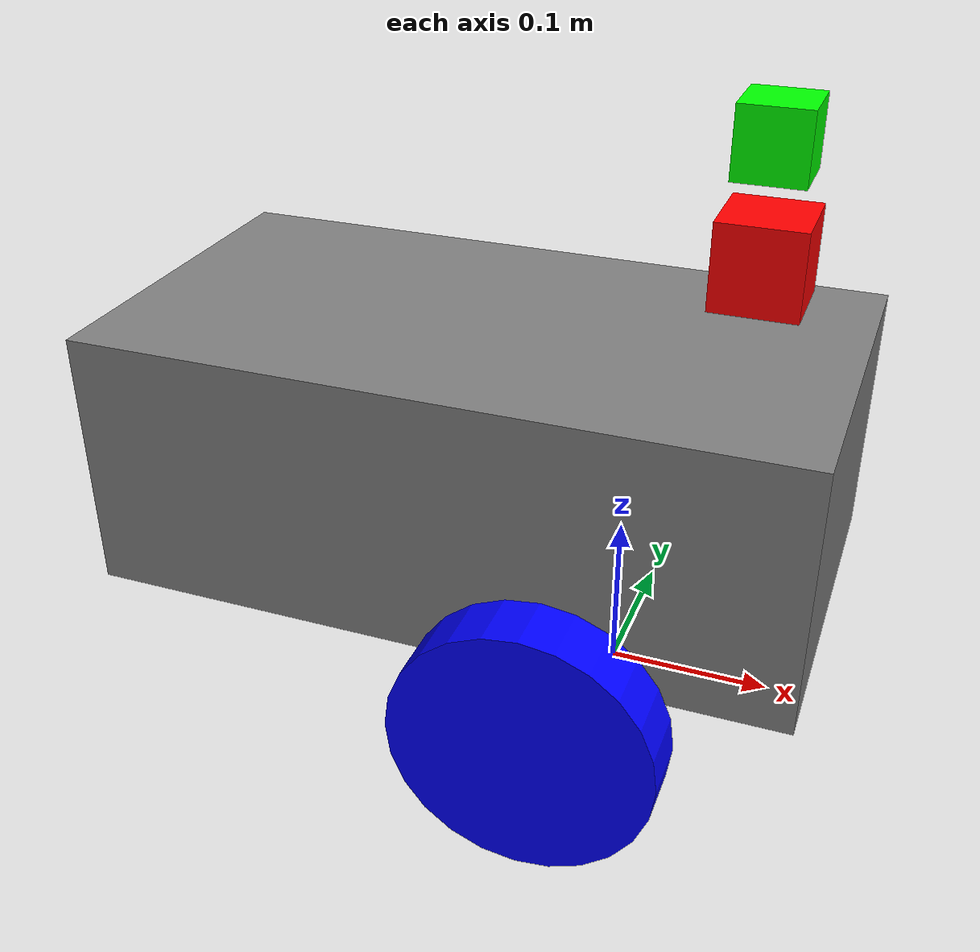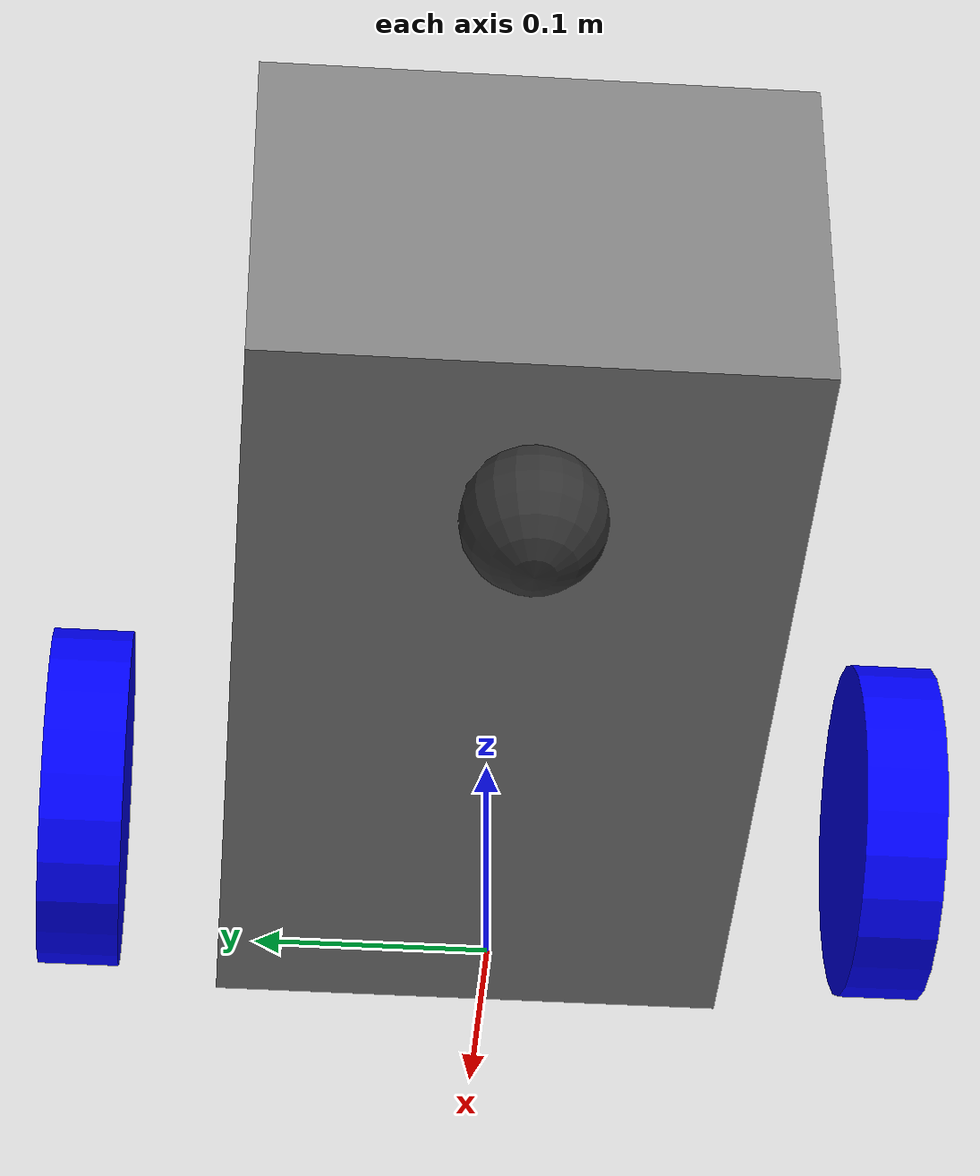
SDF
<?xml version="1.0"?>
<sdf version="1.6">
	<model name='vehicle'>

		<plugin filename="ignition-gazebo-diff-drive-system" name="ignition::gazebo::systems::DiffDrive">
			<left_joint>left_wheel_joint</left_joint>
			<right_joint>right_wheel_joint</right_joint>
			<wheel_separation>0.353</wheel_separation>
			<wheel_radius>0.074</wheel_radius>
			<odom_publish_frequency>20</odom_publish_frequency>
			<topic>/cmd_vel</topic>
			<odom_topic>/odom</odom_topic>
			<tf_topic>/tf</tf_topic>
			<frame_id>odom</frame_id>
			<child_frame_id>base_footprint</child_frame_id>
		</plugin>

		<link name='base_footprint'></link>

		<joint name='base_joint' type='fixed'>
			<parent>base_footprint</parent>
			<child>base_link</child>
		</joint>

		<link name='base_link'>
			<pose>0 0 0 0 0 0</pose>
			<inertial>
				<pose>-0.086 0 0.146 0 0 0</pose>
				<mass>10</mass>
				<inertia>
					<ixx>0.0667</ixx>
					<ixy>0</ixy>
					<ixz>0</ixz>
					<iyy>0.177</iyy>
					<iyz>0</iyz>
					<izz>0.200</izz>
				</inertia>
			</inertial>
			<visual name='visual'>
				<pose>-0.086 0 0.146 0 0 0</pose>
				<geometry>
					<box>
						<size>0.432 0.232 0.162</size>
					</box>
				</geometry>
				<material>
					<ambient>0.5 0.5 0.5 1</ambient>
					<diffuse>0.5 0.5 0.5 1</diffuse>
					<specular>0.5 0.5 0.5 1</specular>
				</material>
			</visual>
			<collision name='collision'>
				<pose>-0.086 0 0.146 0 0 0</pose>
				<geometry>
					<box>
						<size>0.432 0.232 0.162</size>
					</box>
				</geometry>
			</collision>
		</link>

		<joint name='left_wheel_joint' type='revolute'>
			<parent>base_link</parent>
			<child>left_wheel</child>
			<axis>
				<xyz>0 0 1</xyz>
				<limit>
					<lower>-1.79769e+308</lower>
					<upper>1.79769e+308</upper>
				</limit>
			</axis>
		</joint>

		<link name='left_wheel'>
			<pose>0.0 0.1765 0.074 -1.5707 0 0</pose>
			<inertial>
				<mass>1</mass>
				<inertia>
					<ixx>0.00147</ixx>
					<ixy>0</ixy>
					<ixz>0</ixz>
					<iyy>0.00147</iyy>
					<iyz>0</iyz>
					<izz>0.00274</izz>
				</inertia>
			</inertial>
			<visual name='visual'>
				<geometry>
					<cylinder>
						<radius>0.074</radius>
						<length>0.035</length>
					</cylinder>
				</geometry>
				<material>
					<ambient>0 0 1 1</ambient>
					<diffuse>0 0 1 1</diffuse>
					<specular>0 0 1 1</specular>
				</material>
			</visual>
			<collision name='collision'>
				<geometry>
					<cylinder>
						<radius>0.074</radius>
						<length>0.035</length>
					</cylinder>
				</geometry>
				<surface>
					<friction>
						<ode>
							<mu>1.0</mu>
							<mu2>1.0</mu2>
						</ode>
					</friction>
				</surface>
			</collision>
		</link>

		<joint name='right_wheel_joint' type='revolute'>
			<parent>base_link</parent>
			<child>right_wheel</child>
			<axis>
				<xyz>0 0 1</xyz>
				<limit>
					<lower>-1.79769e+308</lower>
					<upper>1.79769e+308</upper>
				</limit>
			</axis>
		</joint>

		<link name='right_wheel'>
			<pose>0.0 -0.1765 0.074 -1.5707 0 0</pose>
			<inertial>
				<mass>1</mass>
				<inertia>
					<ixx>0.00147</ixx>
					<ixy>0</ixy>
					<ixz>0</ixz>
					<iyy>0.00147</iyy>
					<iyz>0</iyz>
					<izz>0.00274</izz>
				</inertia>
			</inertial>
			<visual name='visual'>
				<geometry>
					<cylinder>
						<radius>0.074</radius>
						<length>0.035</length>
					</cylinder>
				</geometry>
				<material>
					<ambient>0 0 1 1</ambient>
					<diffuse>0 0 1 1</diffuse>
					<specular>0 0 1 1</specular>
				</material>
			</visual>
			<collision name='collision'>
				<geometry>
					<cylinder>
						<radius>0.074</radius>
						<length>0.035</length>
					</cylinder>
				</geometry>
				<surface>
					<friction>
						<ode>
							<mu>1.0</mu>
							<mu2>1.0</mu2>
						</ode>
					</friction>
				</surface>
			</collision>
		</link>

		<joint name='caster_joint' type='fixed'>
			<parent>base_link</parent>
			<child>caster</child>
		</joint>

		<link name='caster'>
			<pose>-0.25 0 0.03 0 0 0</pose>
			<inertial>
				<mass>0.1</mass>
				<inertia>
					<ixx>0.000018</ixx>
					<ixy>0</ixy>
					<ixz>0</ixz>
					<iyy>0.000018</iyy>
					<iyz>0</iyz>
					<izz>0.000018</izz>
				</inertia>
			</inertial>
			<visual name='visual'>
				<geometry>
					<sphere>
						<radius>0.03</radius>
					</sphere>
				</geometry>
				<material>
					<ambient>0.2 0.2 0.2 1</ambient>
					<diffuse>0.2 0.2 0.2 1</diffuse>
					<specular>0.2 0.2 0.2 1</specular>
				</material>
			</visual>
			<collision name='collision'>
				<geometry>
					<sphere>
						<radius>0.03</radius>
					</sphere>
				</geometry>
				<surface>
					<friction>
						<ode>
							<mu>0</mu>
							<mu2>0</mu2>
						</ode>
					</friction>
				</surface>
			</collision>
		</link>

		<joint name='lidar_joint' type='fixed'>
			<parent>base_link</parent>
			<child>base_scan</child>
		</joint>

		<link name="base_scan">
			<pose>0.07 0 0.285 0 0 0</pose>
			<inertial>
				<mass>0.2</mass>
				<inertia>
					<ixx>0.0000833</ixx>
					<iyy>0.0000833</iyy>
					<izz>0.0000833</izz>
				</inertia>
			</inertial>
			<visual name="visual">
				<geometry>
					<box>
						<size>0.05 0.05 0.05</size>
					</box>
				</geometry>
				<material>
					<ambient>1 0 0 1</ambient>
					<diffuse>1 0 0 1</diffuse>
					<specular>1 0 0 1</specular>
				</material>
			</visual>
			<collision name="collision">
				<geometry>
					<box>
						<size>0.05 0.05 0.05</size>
					</box>
				</geometry>
			</collision>
			<sensor name="gpu_lidar" type="gpu_lidar">
				<topic>/scan</topic>
				<ignition_frame_id>base_scan</ignition_frame_id>
				<update_rate>10</update_rate>
				<lidar>
					<scan>
						<horizontal>
							<samples>640</samples>
							<resolution>1</resolution>
							<min_angle>-2.35619</min_angle>
							<max_angle>2.35619</max_angle>
						</horizontal>
						<vertical>
							<samples>2</samples>
						</vertical>
					</scan>
					<range>
						<min>0.1</min>
						<max>30.0</max>
						<resolution>0.0043</resolution>
					</range>
				</lidar>
				<alwaysOn>1</alwaysOn>
				<visualize>true</visualize>
			</sensor>
		</link>

		<joint name='camera_joint' type='fixed'>
			<parent>base_link</parent>
			<child>base_camera</child>
		</joint>

		<link name="base_camera">
			<pose>0.07 0 0.35 0 0 0</pose>
			<inertial>
				<mass>0.1</mass>
				<inertia>
					<ixx>0.0000267</ixx>
					<iyy>0.0000267</iyy>
					<izz>0.0000267</izz>
				</inertia>
			</inertial>
			<visual name="visual">
				<geometry>
					<box>
						<size>0.04 0.04 0.04</size>
					</box>
				</geometry>
				<material>
					<ambient>0 1 0 1</ambient>
					<diffuse>0 1 0 1</diffuse>
					<specular>0 1 0 1</specular>
				</material>
			</visual>
			<collision name="collision">
				<geometry>
					<box>
						<size>0.04 0.04 0.04</size>
					</box>
				</geometry>
			</collision>
			<sensor name="camera" type="camera">
				<camera>
					<horizontal_fov>2.047</horizontal_fov>
					<image>
						<width>320</width>
						<height>240</height>
					</image>
					<clip>
						<near>0.1</near>
						<far>100</far>
					</clip>
				</camera>
				<always_on>1</always_on>
				<update_rate>30</update_rate>
				<visualize>true</visualize>
				<topic>image</topic>
			</sensor>
		</link>

		<joint name='left_joint' type='fixed'>
			<parent>base_link</parent>
			<child>left_link</child>
		</joint>

		<link name='left_link'>
			<pose>0.0 0.1765 0.074 -1.5707 0 0</pose>
			<inertial>
				<mass>1</mass>
				<inertia>
					<ixx>0.00147</ixx>
					<ixy>0</ixy>
					<ixz>0</ixz>
					<iyy>0.00147</iyy>
					<iyz>0</iyz>
					<izz>0.00274</izz>
				</inertia>
			</inertial>
			<visual name='visual'>
				<geometry>
					<cylinder>
						<radius>0.074</radius>
						<length>0.035</length>
					</cylinder>
				</geometry>
				<material>
					<ambient>0 0 1 1</ambient>
					<diffuse>0 0 1 1</diffuse>
					<specular>0 0 1 1</specular>
				</material>
			</visual>
			<collision name='collision'>
				<geometry>
					<cylinder>
						<radius>0.074</radius>
						<length>0.035</length>
					</cylinder>
				</geometry>
				<surface>
					<friction>
						<ode>
							<mu>1.0</mu>
							<mu2>1.0</mu2>
						</ode>
					</friction>
				</surface>
			</collision>
		</link>

		<joint name='right_joint' type='fixed'>
			<parent>base_link</parent>
			<child>right_link</child>
		</joint>

		<link name='right_link'>
			<pose>0.0 -0.1765 0.074 -1.5707 0 0</pose>
			<inertial>
				<mass>1</mass>
				<inertia>
					<ixx>0.00147</ixx>
					<ixy>0</ixy>
					<ixz>0</ixz>
					<iyy>0.00147</iyy>
					<iyz>0</iyz>
					<izz>0.00274</izz>
				</inertia>
			</inertial>
			<visual name='visual'>
				<geometry>
					<cylinder>
						<radius>0.074</radius>
						<length>0.035</length>
					</cylinder>
				</geometry>
				<material>
					<ambient>0 0 1 1</ambient>
					<diffuse>0 0 1 1</diffuse>
					<specular>0 0 1 1</specular>
				</material>
			</visual>
			<collision name='collision'>
				<geometry>
					<cylinder>
						<radius>0.074</radius>
						<length>0.035</length>
					</cylinder>
				</geometry>
				<surface>
					<friction>
						<ode>
							<mu>1.0</mu>
							<mu2>1.0</mu2>
						</ode>
					</friction>
				</surface>
			</collision>
		</link>

	</model>

</sdf>
